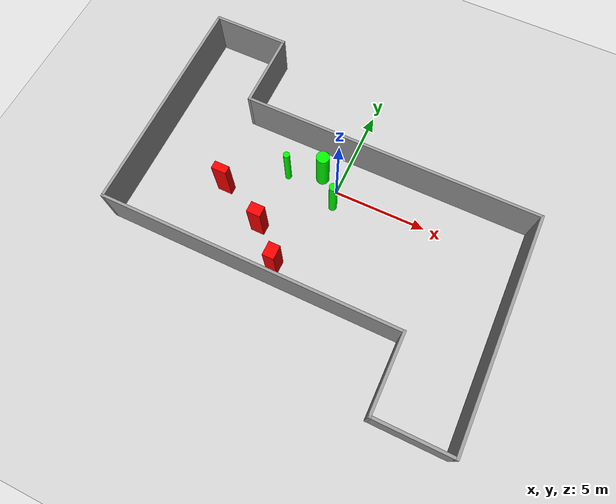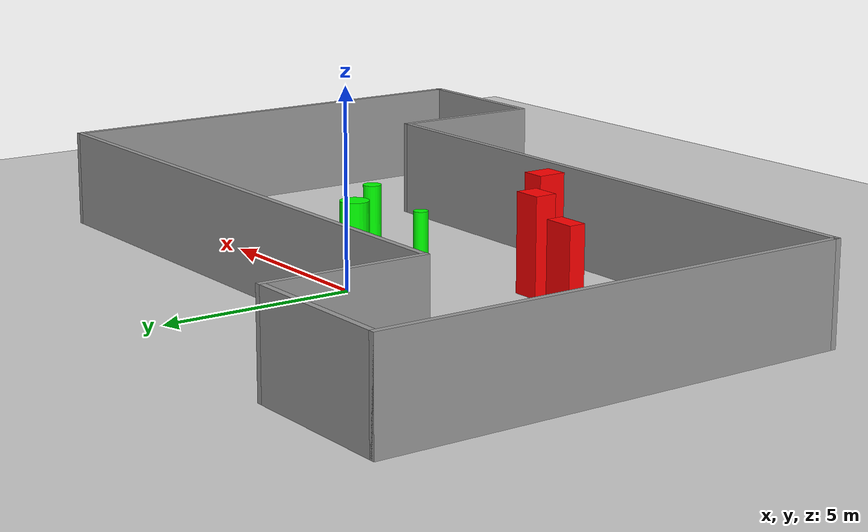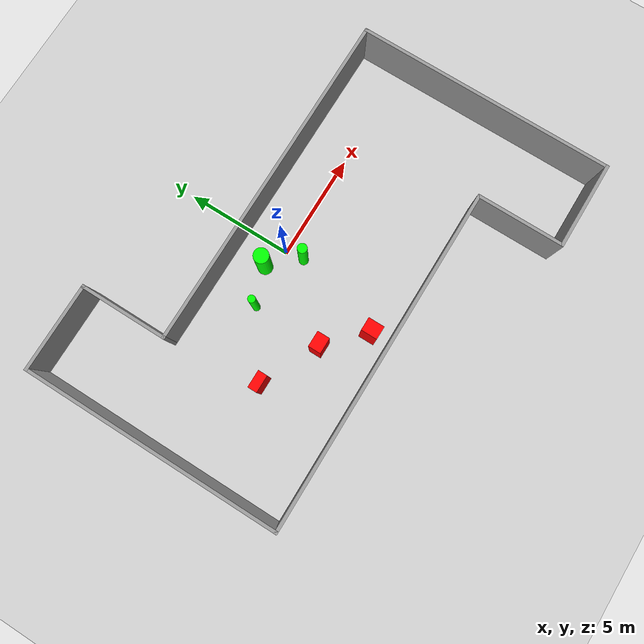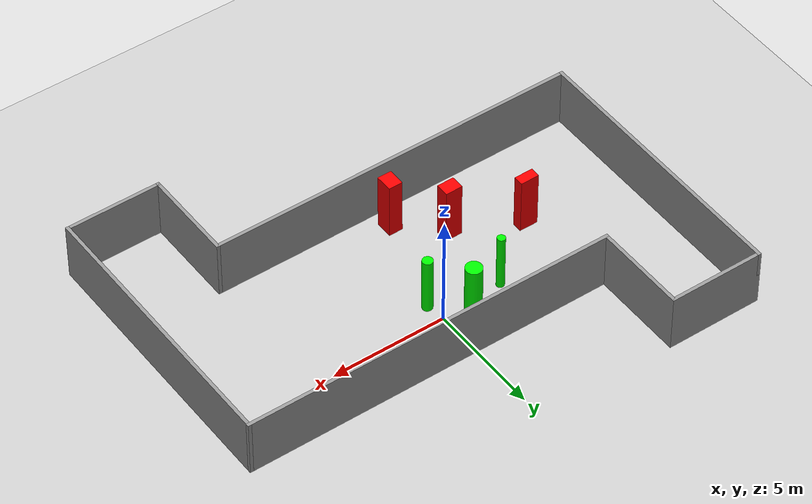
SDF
<sdf version="1.7">
 <world name="default">
  <light name="sun" type="directional">
   <pose>0 0 10 0 -0 0</pose>
   <diffuse>0.8 0.8 0.8 1</diffuse>
   <specular>0.2 0.2 0.2 1</specular>
   <attenuation>
    <range>1000</range>
    <constant>0.9</constant>
    <linear>0.01</linear>
    <quadratic>0.001</quadratic>
   </attenuation>
   <direction>-0.5 0.1 -0.9</direction>
   <spot><inner_angle>0</inner_angle><outer_angle>0</outer_angle><falloff>0</falloff></spot>
  </light>
  <model name="ground_plane">
   <static>1</static>
   <link name="link">
    <collision name="collision">
     <geometry><plane><normal>0 0 1</normal><size>100 100</size></plane></geometry>
     <surface>
      <contact><collide_bitmask>65535</collide_bitmask></contact>
      <friction><ode><mu>100</mu><mu2>50</mu2></ode></friction>
     </surface>
    </collision>
    <visual name="visual">
     <cast_shadows>0</cast_shadows>
     <geometry><plane><normal>0 0 1</normal><size>100 100</size></plane></geometry>
     <material>
      <script><uri>file://media/materials/scripts/gazebo.material</uri><name>Gazebo/Grey</name></script>
     </material>
    </visual>
   </link>
  </model>
  <gravity>0 0 -9.8</gravity>
  <magnetic_field>6e-06 2.3e-05 -4.2e-05</magnetic_field>
  <atmosphere type="adiabatic"/>
  <physics type="ode">
   <max_step_size>0.001</max_step_size>
   <real_time_factor>1</real_time_factor>
   <real_time_update_rate>1000</real_time_update_rate>
  </physics>
  <scene><ambient>0.4 0.4 0.4 1</ambient><background>0.7 0.7 0.7 1</background><shadows>1</shadows></scene>
  <spherical_coordinates>
   <surface_model>EARTH_WGS84</surface_model>
   <latitude_deg>0</latitude_deg>
   <longitude_deg>0</longitude_deg>
   <elevation>0</elevation>
   <heading_deg>0</heading_deg>
  </spherical_coordinates>
  <model name="my_base_walls">
   <link name="Wall_13">
    <collision name="Wall_13_Collision">
     <geometry><box><size>12.15 0.15 2.5</size></box></geometry>
     <pose>0 0 1.25 0 -0 0</pose>
    </collision>
    <visual name="Wall_13_Visual">
     <pose>0 0 1.25 0 -0 0</pose>
     <geometry><box><size>12.15 0.15 2.5</size></box></geometry>
     <material>
      <script><uri>file://media/materials/scripts/gazebo.material</uri><name>Gazebo/Grey</name></script>
      <ambient>1 1 1 1</ambient>
     </material>
     <meta><layer>0</layer></meta>
    </visual>
    <pose>10 -2 0 0 -0 1.5708</pose>
   </link>
   <link name="Wall_15">
    <collision name="Wall_15_Collision">
     <geometry><box><size>16.15 0.15 2.5</size></box></geometry>
     <pose>0 0 1.25 0 -0 0</pose>
    </collision>
    <visual name="Wall_15_Visual">
     <pose>0 0 1.25 0 -0 0</pose>
     <geometry><box><size>16.15 0.15 2.5</size></box></geometry>
     <material>
      <script><uri>file://media/materials/scripts/gazebo.material</uri><name>Gazebo/Grey</name></script>
      <ambient>1 1 1 1</ambient>
     </material>
     <meta><layer>0</layer></meta>
    </visual>
    <pose>2 4 0 0 -0 3.14159</pose>
   </link>
   <link name="Wall_17">
    <collision name="Wall_17_Collision">
     <geometry><box><size>4.15 0.15 2.5</size></box></geometry>
     <pose>0 0 1.25 0 -0 0</pose>
    </collision>
    <visual name="Wall_17_Visual">
     <pose>0 0 1.25 0 -0 0</pose>
     <geometry><box><size>4.15 0.15 2.5</size></box></geometry>
     <material>
      <script><uri>file://media/materials/scripts/gazebo.material</uri><name>Gazebo/Grey</name></script>
      <ambient>1 1 1 1</ambient>
     </material>
     <meta><layer>0</layer></meta>
    </visual>
    <pose>6 -6 0 0 -0 -1.5708</pose>
   </link>
   <link name="Wall_19">
    <collision name="Wall_19_Collision">
     <geometry><box><size>12.15 0.15 2.5</size></box></geometry>
     <pose>0 0 1.25 0 -0 0</pose>
    </collision>
    <visual name="Wall_19_Visual">
     <pose>0 0 1.25 0 -0 0</pose>
     <geometry><box><size>12.15 0.15 2.5</size></box></geometry>
     <material>
      <script><uri>file://media/materials/scripts/gazebo.material</uri><name>Gazebo/Grey</name></script>
      <ambient>1 1 1 1</ambient>
     </material>
     <meta><layer>0</layer></meta>
    </visual>
    <pose>-10 2 0 0 -0 1.5708</pose>
   </link>
   <link name="Wall_21">
    <collision name="Wall_21_Collision">
     <geometry><box><size>4.15 0.15 2.5</size></box></geometry>
     <pose>0 0 1.25 0 -0 0</pose>
    </collision>
    <visual name="Wall_21_Visual">
     <pose>0 0 1.25 0 -0 0</pose>
     <geometry><box><size>4.15 0.15 2.5</size></box></geometry>
     <material>
      <script><uri>file://media/materials/scripts/gazebo.material</uri><name>Gazebo/Grey</name></script>
      <ambient>1 1 1 1</ambient>
     </material>
     <meta><layer>0</layer></meta>
    </visual>
    <pose>-8 8 0 0 -0 0</pose>
   </link>
   <link name="Wall_23">
    <collision name="Wall_23_Collision">
     <geometry><box><size>4.15 0.15 2.5</size></box></geometry>
     <pose>0 0 1.25 0 -0 0</pose>
    </collision>
    <visual name="Wall_23_Visual">
     <pose>0 0 1.25 0 -0 0</pose>
     <geometry><box><size>4.15 0.15 2.5</size></box></geometry>
     <material>
      <script><uri>file://media/materials/scripts/gazebo.material</uri><name>Gazebo/Grey</name></script>
      <ambient>1 1 1 1</ambient>
     </material>
     <meta><layer>0</layer></meta>
    </visual>
    <pose>-6 6 0 0 -0 -1.5708</pose>
   </link>
   <link name="Wall_25">
    <collision name="Wall_25_Collision">
     <geometry><box><size>4.15 0.15 2.5</size></box></geometry>
     <pose>0 0 1.25 0 -0 0</pose>
    </collision>
    <visual name="Wall_25_Visual">
     <pose>0 0 1.25 0 -0 0</pose>
     <geometry><box><size>4.15 0.15 2.5</size></box></geometry>
     <material>
      <script><uri>file://media/materials/scripts/gazebo.material</uri><name>Gazebo/Grey</name></script>
      <ambient>1 1 1 1</ambient>
     </material>
     <meta><layer>0</layer></meta>
    </visual>
    <pose>8 -8 0 0 -0 0</pose>
   </link>
   <link name="Wall_9">
    <collision name="Wall_9_Collision">
     <geometry><box><size>16.15 0.15 2.5</size></box></geometry>
     <pose>0 0 1.25 0 -0 0</pose>
    </collision>
    <visual name="Wall_9_Visual">
     <pose>0 0 1.25 0 -0 0</pose>
     <geometry><box><size>16.15 0.15 2.5</size></box></geometry>
     <material>
      <script><uri>file://media/materials/scripts/gazebo.material</uri><name>Gazebo/Grey</name></script>
      <ambient>1 1 1 1</ambient>
     </material>
     <meta><layer>0</layer></meta>
    </visual>
    <pose>-2 -4 0 0 -0 3.14159</pose>
   </link>
   <static>1</static>
   <pose>-0 -2 0 0 -0 0</pose>
  </model>
  <model name="cylinder1">
   <static>1</static>
   <link name="link">
    <inertial>
     <mass>1</mass>
     <inertia><ixx>0.5</ixx><ixy>0</ixy><ixz>0</ixz><iyy>0.5</iyy><iyz>0</iyz><izz>1</izz></inertia>
    </inertial>
    <collision name="collision">
     <geometry><cylinder><radius>0.17207196627446417</radius><length>2.5</length></cylinder></geometry>
    </collision>
    <visual name="visual">
     <geometry><cylinder><radius>0.17207196627446417</radius><length>2.5</length></cylinder></geometry>
     <material>
      <ambient>0 1 0 1</ambient>
      <diffuse>0 1 0 1</diffuse>
      <specular>0.1 0.1 0.1 1</specular>
      <emissive>0 0 0 0</emissive>
     </material>
    </visual>
   </link>
   <pose>-2.768768726731588 -0.19394324434689825 1.25 0 0 0</pose>
  </model>
  <model name="cylinder2">
   <static>1</static>
   <link name="link">
    <inertial>
     <mass>1</mass>
     <inertia><ixx>0.5</ixx><ixy>0</ixy><ixz>0</ixz><iyy>0.5</iyy><iyz>0</iyz><izz>1</izz></inertia>
    </inertial>
    <collision name="collision">
     <geometry><cylinder><radius>0.3499492748031005</radius><length>2.5</length></cylinder></geometry>
    </collision>
    <visual name="visual">
     <geometry><cylinder><radius>0.3499492748031005</radius><length>2.5</length></cylinder></geometry>
     <material>
      <ambient>0 1 0 1</ambient>
      <diffuse>0 1 0 1</diffuse>
      <specular>0.1 0.1 0.1 1</specular>
      <emissive>0 0 0 0</emissive>
     </material>
    </visual>
   </link>
   <pose>-1.0297945367517594 0.45591500692939224 1.25 0 0 0</pose>
  </model>
  <model name="cylinder3">
   <static>1</static>
   <link name="link">
    <inertial>
     <mass>1</mass>
     <inertia><ixx>0.5</ixx><ixy>0</ixy><ixz>0</ixz><iyy>0.5</iyy><iyz>0</iyz><izz>1</izz></inertia>
    </inertial>
    <collision name="collision">
     <geometry><cylinder><radius>0.22246330192217917</radius><length>2.5</length></cylinder></geometry>
    </collision>
    <visual name="visual">
     <geometry><cylinder><radius>0.22246330192217917</radius><length>2.5</length></cylinder></geometry>
     <material>
      <ambient>0 1 0 1</ambient>
      <diffuse>0 1 0 1</diffuse>
      <specular>0.1 0.1 0.1 1</specular>
      <emissive>0 0 0 0</emissive>
     </material>
    </visual>
   </link>
   <pose>0.13996594015097585 -0.8360970645462578 1.25 0 0 0</pose>
  </model>
  <model name="box1">
   <static>1</static>
   <link name="link">
    <inertial>
     <mass>1</mass>
     <inertia><ixx>0.083</ixx><ixy>0</ixy><ixz>0</ixz><iyy>0.083</iyy><iyz>0</iyz><izz>0.083</izz></inertia>
    </inertial>
    <collision name="collision">
     <geometry><box><size>0.6085122550218809 0.7481525877169302 2.5</size></box></geometry>
    </collision>
    <visual name="visual">
     <geometry><box><size>0.6085122550218809 0.7481525877169302 2.5</size></box></geometry>
     <material>
      <ambient>1 0 0 1</ambient>
      <diffuse>1 0 0 1</diffuse>
      <specular>0.1 0.1 0.1 1</specular>
      <emissive>0 0 0 0</emissive>
     </material>
    </visual>
    <sensor name="my_contact" type="contact">
     <contact><collision>box_collision</collision><topic>__default_topic__</topic></contact>
    </sensor>
   </link>
   <pose>-1.1807789347409177 -5.075811758372399 1.25 0 0 0</pose>
  </model>
  <model name="box2">
   <static>1</static>
   <link name="link">
    <inertial>
     <mass>1</mass>
     <inertia><ixx>0.083</ixx><ixy>0</ixy><ixz>0</ixz><iyy>0.083</iyy><iyz>0</iyz><izz>0.083</izz></inertia>
    </inertial>
    <collision name="collision">
     <geometry><box><size>0.807391438406118 0.42698002336962304 2.5</size></box></geometry>
    </collision>
    <visual name="visual">
     <geometry><box><size>0.807391438406118 0.42698002336962304 2.5</size></box></geometry>
     <material>
      <ambient>1 0 0 1</ambient>
      <diffuse>1 0 0 1</diffuse>
      <specular>0.1 0.1 0.1 1</specular>
      <emissive>0 0 0 0</emissive>
     </material>
    </visual>
    <sensor name="my_contact" type="contact">
     <contact><collision>box_collision</collision><topic>__default_topic__</topic></contact>
    </sensor>
   </link>
   <pose>-5.473820942778154 -2.2244098819637976 1.25 0 0 0</pose>
  </model>
  <model name="box3">
   <static>1</static>
   <link name="link">
    <inertial>
     <mass>1</mass>
     <inertia><ixx>0.083</ixx><ixy>0</ixy><ixz>0</ixz><iyy>0.083</iyy><iyz>0</iyz><izz>0.083</izz></inertia>
    </inertial>
    <collision name="collision">
     <geometry><box><size>0.7342187806856382 0.5781148704430592 2.5</size></box></geometry>
    </collision>
    <visual name="visual">
     <geometry><box><size>0.7342187806856382 0.5781148704430592 2.5</size></box></geometry>
     <material>
      <ambient>1 0 0 1</ambient>
      <diffuse>1 0 0 1</diffuse>
      <specular>0.1 0.1 0.1 1</specular>
      <emissive>0 0 0 0</emissive>
     </material>
    </visual>
    <sensor name="my_contact" type="contact">
     <contact><collision>box_collision</collision><topic>__default_topic__</topic></contact>
    </sensor>
   </link>
   <pose>-2.8222694249551523 -3.5039161787331405 1.25 0 0 0</pose>
  </model>
 </world>
</sdf>
